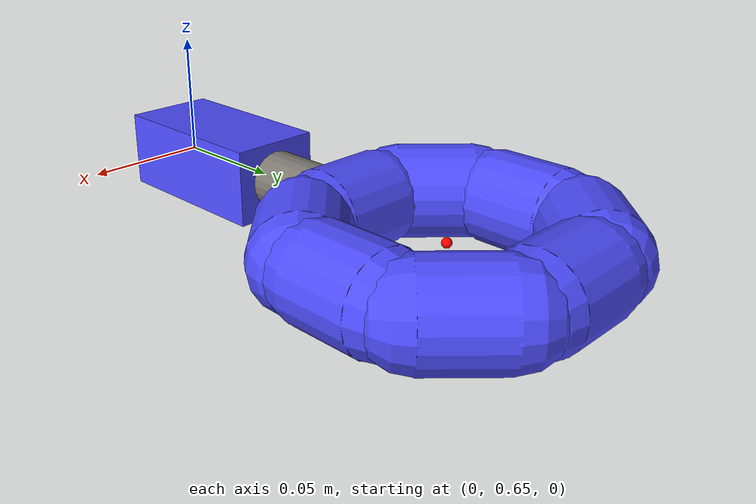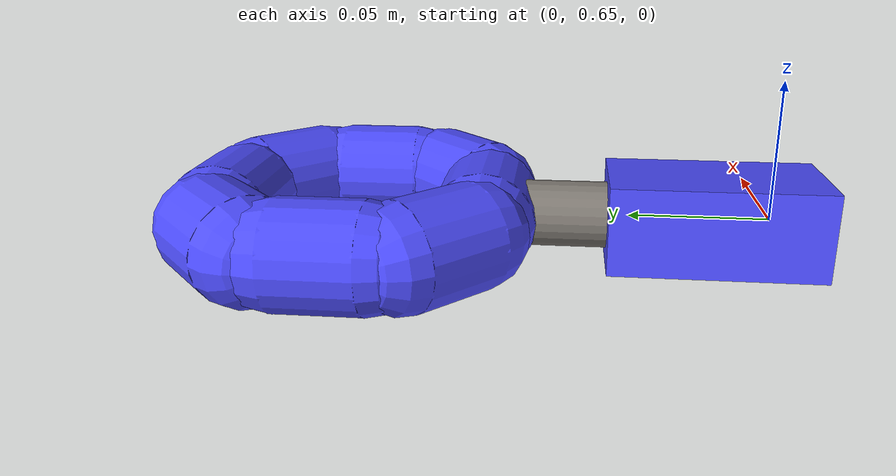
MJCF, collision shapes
<mujoco model="assembly_peg">
    <compiler angle="radian" inertiafromgeom="auto" inertiagrouprange="4 5"/>
    <asset>
        <texture name="T_asmbly_met" type="cube" file="../textures/metal1.png"/>

      <material name="asmbly_col" rgba="0.3 0.3 1.0 0.5" shininess="0" specular="0"/>
      <material name="asmbly_green" rgba="0 .5 0 1" shininess="1" reflectance=".7" specular=".5"/>

      <material name="asmbly_metal" rgba=".65 .65 .65 1" texture="T_asmbly_met" shininess="1" reflectance=".7" specular=".5"/>

    </asset>
    <default>

      <default class="asmbly_base">
          <joint armature="0.001" damping="2" limited="true"/>
          <geom conaffinity="0" contype="0" group="1" type="mesh"/>
          <position ctrllimited="true" ctrlrange="0 1.57"/>
          <default class="asmbly_viz">
              <geom condim="4" type="mesh"/>
          </default>
          <default class="asmbly_col">
              <geom conaffinity="1" condim="3" contype="1" group="4" material="asmbly_col" solimp="0.99 0.99 0.01" solref="0.01 1"/>
          </default>
      </default>
    </default>

    <asset>
        <mesh file="../objects/meshes/assembly_peg/assembly_peg_handle.stl" name="assembly_peg_handle" scale="1 1 1" />
        <mesh file="../objects/meshes/assembly_peg/assembly_peg_ring.stl" name="assembly_peg_ring" scale="1 1 1" />
        <mesh file="../objects/meshes/assembly_peg/assembly_peg_rod.stl" name="assembly_peg_rod" scale="1 1 1" />
    </asset>
    <worldbody>
        <body pos="0 0.8 0">
            <freejoint/>
            <body childclass="asmbly_base" name="asmbly_peg">
        <geom material="asmbly_metal" mesh="assembly_peg_ring"/>
        <geom material="asmbly_green" mesh="assembly_peg_handle" pos="0 -0.13 0" name="WrenchHandle"/>
        <geom material="asmbly_metal" euler="1.57 0 0" pos="0 -0.1 0" size="0.012 0.05" type="cylinder"/>
        <geom class="asmbly_col" euler="1.57 0 0" pos="0.048 0 0" size="0.019 0.015" type="capsule" mass=".02"/>
        <geom class="asmbly_col" euler="0 1.57 0" pos="0 0.048 0" size="0.019 0.015" type="capsule" mass=".02"/>
        <geom class="asmbly_col" euler="1.57 0.785 0.785" pos="0.036 0.036 0" size="0.019 0.015" type="capsule" mass=".02"/>
        <geom class="asmbly_col" euler="1.57 0 0" pos="-0.048 0.0 0.0" size="0.019 0.015" type="capsule" mass=".02"/>
        <geom class="asmbly_col" euler="0 1.57 0" pos="0.0 -0.048 0.0" size="0.019 0.015" type="capsule" mass=".02"/>
        <geom class="asmbly_col" euler="1.57 -0.785 -0.785" pos="-0.036 0.036 0" size="0.019 0.015" type="capsule" mass=".02"/>
        <geom class="asmbly_col" euler="1.57 0.785 0.785" pos="-0.036 -0.036 0" size="0.019 0.015" type="capsule" mass=".02"/>
        <geom class="asmbly_col" euler="1.57 -0.785 -0.785" pos="0.036 -0.036 0" size="0.019 0.015" type="capsule" mass=".02"/>
        <geom class="asmbly_col" pos="0 -0.13 0" size="0.019 0.038 0.016" type="box" mass=".04"/>
        <geom class="asmbly_col" euler="1.57 0 0" pos="0 -0.1 0" size="0.012 0.05" type="cylinder" mass=".02"/>
        <site rgba="1 0 0 1" size="0.002 0.002 0.002" pos="0 0 0" type="sphere" name="RoundNut"/>
        <site rgba="1 1 1 1" size="0.005 0.005 0.005" pos="0 -.13 0.0" type="sphere" name="RoundNut-8"/>
    </body>
        </body>
    </worldbody>
</mujoco>
